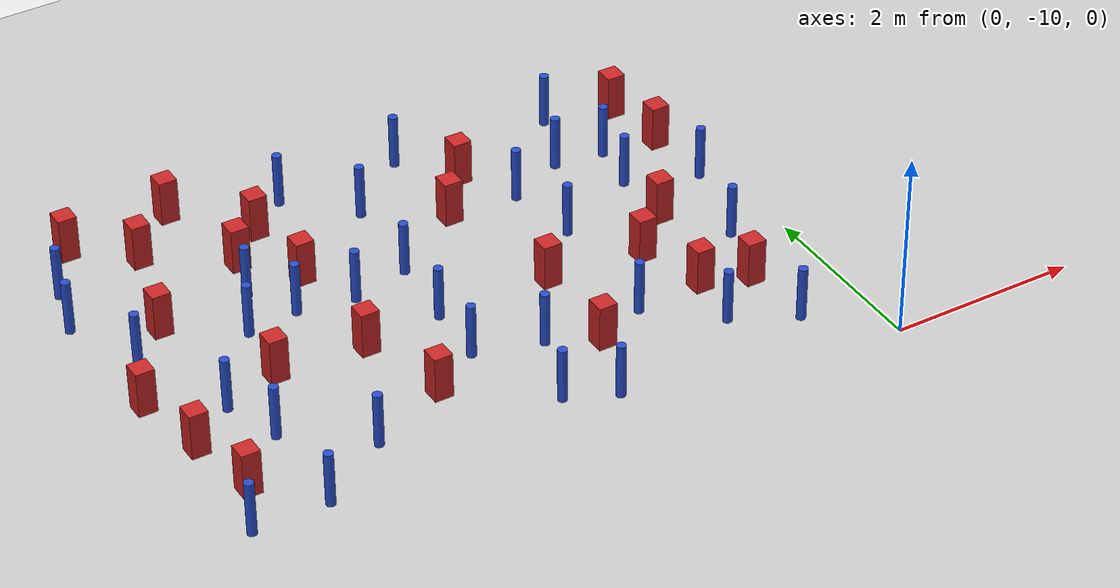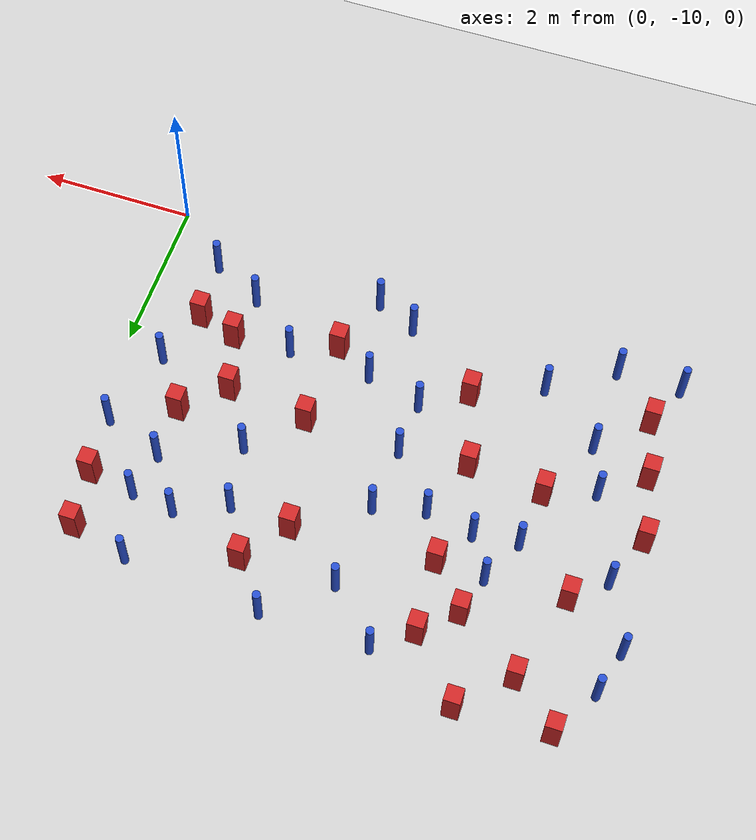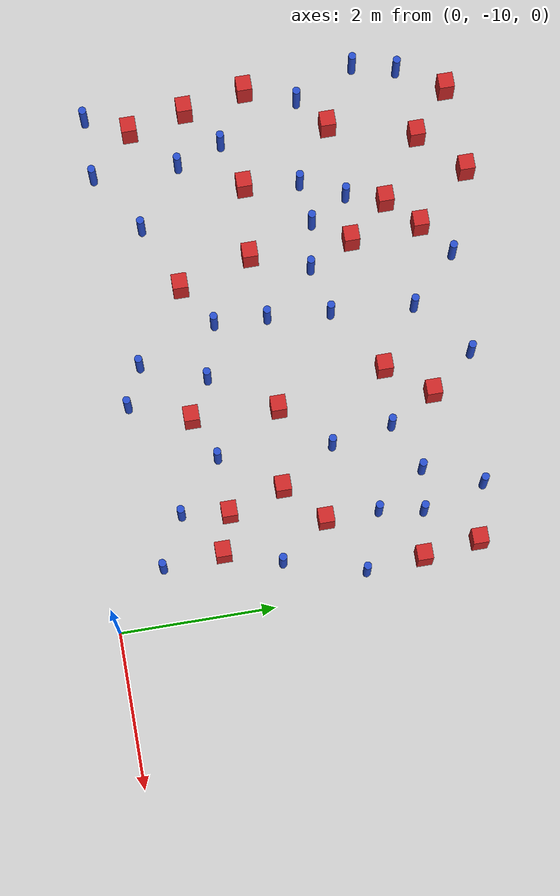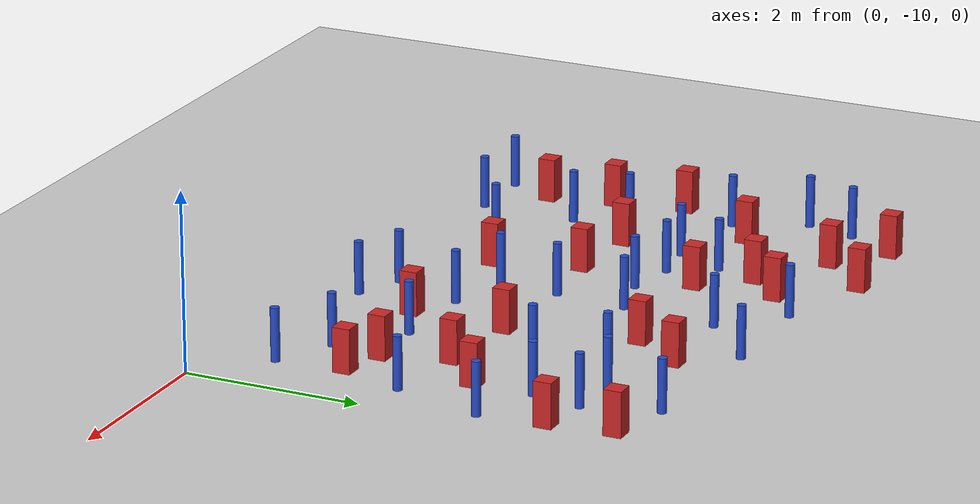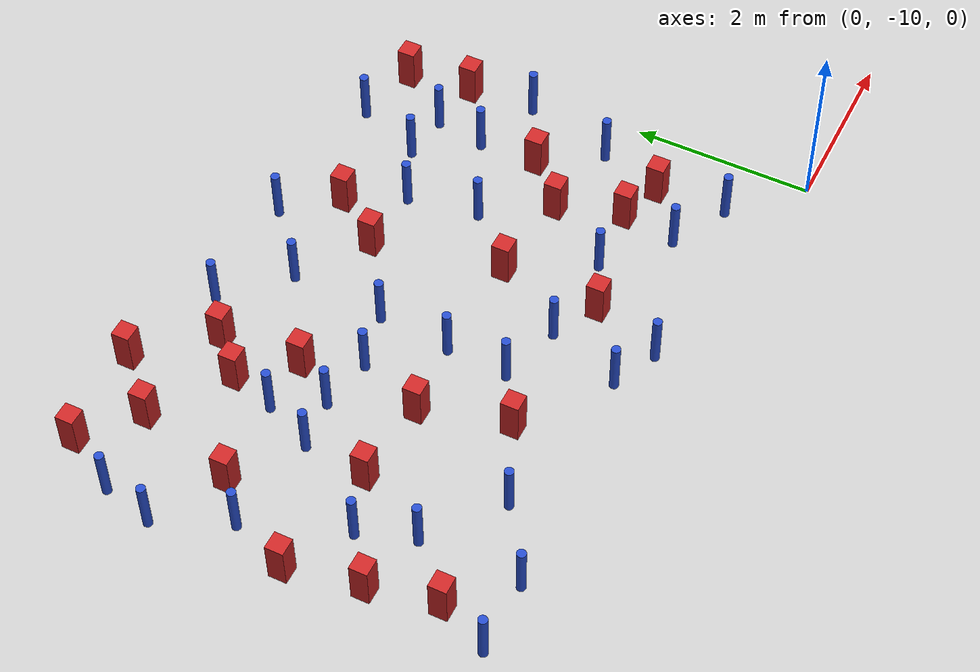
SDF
<sdf version="1.6">
 <world name="default">
  <model name="ground_plane">
   <static>1</static>
   <link name="link">
    <collision name="collision">
     <geometry><plane><normal>0 0 1</normal><size>100 100</size></plane></geometry>
     <surface><friction><ode><mu>100</mu><mu2>50</mu2></ode></friction></surface>
    </collision>
    <visual name="visual">
     <cast_shadows>0</cast_shadows>
     <geometry><plane><normal>0 0 1</normal><size>100 100</size></plane></geometry>
     <material>
      <ambient>1.0 1.0 1.0 1.0</ambient>
      <diffuse>0.8 0.8 0.8 1.0</diffuse>
      <specular>0.01 0.01 0.01 1.000000</specular>
     </material>
    </visual>
   </link>
  </model>
  <model name="square_post_obstacle0">
   <static>true</static>
   <pose>-2.51508626237 -7.53984538496 8.22691968438e-08 7.2212513382e-06 -7.54495500217e-07 2.29674213826e-05</pose>
   <link name="link">
    <pose>0 0 0.25 0 -0 0</pose>
    <inertial>
     <mass>100</mass>
     <inertia>
      <ixx>0.166667</ixx>
      <ixy>0</ixy>
      <ixz>0</ixz>
      <iyy>0.166667</iyy>
      <iyz>0</iyz>
      <izz>0.166667</izz>
     </inertia>
    </inertial>
    <collision name="collision"><geometry><box><size>.2 .2 .5</size></box></geometry></collision>
    <visual name="visual">
     <geometry><box><size>.2 .2 .5</size></box></geometry>
     <material>
      <script><name>Gazebo/Red</name><uri>file://media/materials/scripts/gazebo.material</uri></script>
     </material>
    </visual>
   </link>
  </model>
  <model name="pole_obstacle2">
   <static>true</static>
   <pose>-3.71937393445 -7.48251742339 2.88873142074e-08 -9.90536689859e-09 4.60219948989e-07 -1.20965994961e-07</pose>
   <link name="link">
    <pose>0 0 0.3 0 -0 0</pose>
    <inertial>
     <mass>1</mass>
     <inertia><ixx>0.145833</ixx><ixy>0</ixy><ixz>0</ixz><iyy>0.145833</iyy><iyz>0</iyz><izz>0.125</izz></inertia>
    </inertial>
    <collision name="collision">
     <geometry><cylinder><radius>0.05</radius><length>.6</length></cylinder></geometry>
    </collision>
    <visual name="visual">
     <geometry><cylinder><radius>0.05</radius><length>.6</length></cylinder></geometry>
     <material>
      <script><name>Gazebo/Blue</name><uri>file://media/materials/scripts/gazebo.material</uri></script>
     </material>
    </visual>
   </link>
  </model>
  <model name="square_post_obstacle7">
   <static>true</static>
   <pose>-5.82940536862 -5.1514806708 8.22691968438e-08 7.2212513382e-06 -7.54495500217e-07 2.29674213826e-05</pose>
   <link name="link">
    <pose>0 0 0.25 0 -0 0</pose>
    <inertial>
     <mass>100</mass>
     <inertia>
      <ixx>0.166667</ixx>
      <ixy>0</ixy>
      <ixz>0</ixz>
      <iyy>0.166667</iyy>
      <iyz>0</iyz>
      <izz>0.166667</izz>
     </inertia>
    </inertial>
    <collision name="collision"><geometry><box><size>.2 .2 .5</size></box></geometry></collision>
    <visual name="visual">
     <geometry><box><size>.2 .2 .5</size></box></geometry>
     <material>
      <script><name>Gazebo/Red</name><uri>file://media/materials/scripts/gazebo.material</uri></script>
     </material>
    </visual>
   </link>
  </model>
  <model name="square_post_obstacle11">
   <static>true</static>
   <pose>-6.14885330186 -6.27822620276 8.22691968438e-08 7.2212513382e-06 -7.54495500217e-07 2.29674213826e-05</pose>
   <link name="link">
    <pose>0 0 0.25 0 -0 0</pose>
    <inertial>
     <mass>100</mass>
     <inertia>
      <ixx>0.166667</ixx>
      <ixy>0</ixy>
      <ixz>0</ixz>
      <iyy>0.166667</iyy>
      <iyz>0</iyz>
      <izz>0.166667</izz>
     </inertia>
    </inertial>
    <collision name="collision"><geometry><box><size>.2 .2 .5</size></box></geometry></collision>
    <visual name="visual">
     <geometry><box><size>.2 .2 .5</size></box></geometry>
     <material>
      <script><name>Gazebo/Red</name><uri>file://media/materials/scripts/gazebo.material</uri></script>
     </material>
    </visual>
   </link>
  </model>
  <model name="square_post_obstacle12">
   <static>true</static>
   <pose>-1.4836494756 -7.65505798456 8.22691968438e-08 7.2212513382e-06 -7.54495500217e-07 2.29674213826e-05</pose>
   <link name="link">
    <pose>0 0 0.25 0 -0 0</pose>
    <inertial>
     <mass>100</mass>
     <inertia>
      <ixx>0.166667</ixx>
      <ixy>0</ixy>
      <ixz>0</ixz>
      <iyy>0.166667</iyy>
      <iyz>0</iyz>
      <izz>0.166667</izz>
     </inertia>
    </inertial>
    <collision name="collision"><geometry><box><size>.2 .2 .5</size></box></geometry></collision>
    <visual name="visual">
     <geometry><box><size>.2 .2 .5</size></box></geometry>
     <material>
      <script><name>Gazebo/Red</name><uri>file://media/materials/scripts/gazebo.material</uri></script>
     </material>
    </visual>
   </link>
  </model>
  <model name="square_post_obstacle16">
   <static>true</static>
   <pose>-6.39864318015 -4.66652046836 8.22691968438e-08 7.2212513382e-06 -7.54495500217e-07 2.29674213826e-05</pose>
   <link name="link">
    <pose>0 0 0.25 0 -0 0</pose>
    <inertial>
     <mass>100</mass>
     <inertia>
      <ixx>0.166667</ixx>
      <ixy>0</ixy>
      <ixz>0</ixz>
      <iyy>0.166667</iyy>
      <iyz>0</iyz>
      <izz>0.166667</izz>
     </inertia>
    </inertial>
    <collision name="collision"><geometry><box><size>.2 .2 .5</size></box></geometry></collision>
    <visual name="visual">
     <geometry><box><size>.2 .2 .5</size></box></geometry>
     <material>
      <script><name>Gazebo/Red</name><uri>file://media/materials/scripts/gazebo.material</uri></script>
     </material>
    </visual>
   </link>
  </model>
  <model name="square_post_obstacle17">
   <static>true</static>
   <pose>-2.39460660989 -5.54675566457 8.22691968438e-08 7.2212513382e-06 -7.54495500217e-07 2.29674213826e-05</pose>
   <link name="link">
    <pose>0 0 0.25 0 -0 0</pose>
    <inertial>
     <mass>100</mass>
     <inertia>
      <ixx>0.166667</ixx>
      <ixy>0</ixy>
      <ixz>0</ixz>
      <iyy>0.166667</iyy>
      <iyz>0</iyz>
      <izz>0.166667</izz>
     </inertia>
    </inertial>
    <collision name="collision"><geometry><box><size>.2 .2 .5</size></box></geometry></collision>
    <visual name="visual">
     <geometry><box><size>.2 .2 .5</size></box></geometry>
     <material>
      <script><name>Gazebo/Red</name><uri>file://media/materials/scripts/gazebo.material</uri></script>
     </material>
    </visual>
   </link>
  </model>
  <model name="square_post_obstacle18">
   <static>true</static>
   <pose>-4.30766637956 -8.52579925816 8.22691968438e-08 7.22125133819e-06 -7.54495500217e-07 2.29674213826e-05</pose>
   <link name="link">
    <pose>0 0 0.25 0 -0 0</pose>
    <inertial>
     <mass>100</mass>
     <inertia>
      <ixx>0.166667</ixx>
      <ixy>0</ixy>
      <ixz>0</ixz>
      <iyy>0.166667</iyy>
      <iyz>0</iyz>
      <izz>0.166667</izz>
     </inertia>
    </inertial>
    <collision name="collision"><geometry><box><size>.2 .2 .5</size></box></geometry></collision>
    <visual name="visual">
     <geometry><box><size>.2 .2 .5</size></box></geometry>
     <material>
      <script><name>Gazebo/Red</name><uri>file://media/materials/scripts/gazebo.material</uri></script>
     </material>
    </visual>
   </link>
  </model>
  <model name="square_post_obstacle22">
   <static>true</static>
   <pose>-6.4985242495 -8.85052019008 8.22691968438e-08 7.22125133819e-06 -7.54495500217e-07 2.29674213826e-05</pose>
   <link name="link">
    <pose>0 0 0.25 0 -0 0</pose>
    <inertial>
     <mass>100</mass>
     <inertia>
      <ixx>0.166667</ixx>
      <ixy>0</ixy>
      <ixz>0</ixz>
      <iyy>0.166667</iyy>
      <iyz>0</iyz>
      <izz>0.166667</izz>
     </inertia>
    </inertial>
    <collision name="collision"><geometry><box><size>.2 .2 .5</size></box></geometry></collision>
    <visual name="visual">
     <geometry><box><size>.2 .2 .5</size></box></geometry>
     <material>
      <script><name>Gazebo/Red</name><uri>file://media/materials/scripts/gazebo.material</uri></script>
     </material>
    </visual>
   </link>
  </model>
  <model name="pole_obstacle17">
   <static>true</static>
   <pose>-1.42520517139 -5.86311108822 2.88873142074e-08 -9.90536689852e-09 4.60219948989e-07 -1.2096599496e-07</pose>
   <link name="link">
    <pose>0 0 0.3 0 -0 0</pose>
    <inertial>
     <mass>1</mass>
     <inertia><ixx>0.145833</ixx><ixy>0</ixy><ixz>0</ixz><iyy>0.145833</iyy><iyz>0</iyz><izz>0.125</izz></inertia>
    </inertial>
    <collision name="collision">
     <geometry><cylinder><radius>0.05</radius><length>.6</length></cylinder></geometry>
    </collision>
    <visual name="visual">
     <geometry><cylinder><radius>0.05</radius><length>.6</length></cylinder></geometry>
     <material>
      <script><name>Gazebo/Blue</name><uri>file://media/materials/scripts/gazebo.material</uri></script>
     </material>
    </visual>
   </link>
  </model>
  <model name="pole_obstacle19">
   <static>true</static>
   <pose>-0.705162636083 -9.32146711914 2.88873142074e-08 -9.90536690779e-09 4.60219948967e-07 -1.20965994975e-07</pose>
   <link name="link">
    <pose>0 0 0.3 0 -0 0</pose>
    <inertial>
     <mass>1</mass>
     <inertia><ixx>0.145833</ixx><ixy>0</ixy><ixz>0</ixz><iyy>0.145833</iyy><iyz>0</iyz><izz>0.125</izz></inertia>
    </inertial>
    <collision name="collision">
     <geometry><cylinder><radius>0.05</radius><length>.6</length></cylinder></geometry>
    </collision>
    <visual name="visual">
     <geometry><cylinder><radius>0.05</radius><length>.6</length></cylinder></geometry>
     <material>
      <script><name>Gazebo/Blue</name><uri>file://media/materials/scripts/gazebo.material</uri></script>
     </material>
    </visual>
   </link>
  </model>
  <model name="pole_obstacle20">
   <static>true</static>
   <pose>-3.04957999748 -8.37254902779 2.88873142074e-08 -9.90536692318e-09 4.6021994893e-07 -1.20965994988e-07</pose>
   <link name="link">
    <pose>0 0 0.3 0 -0 0</pose>
    <inertial>
     <mass>1</mass>
     <inertia><ixx>0.145833</ixx><ixy>0</ixy><ixz>0</ixz><iyy>0.145833</iyy><iyz>0</iyz><izz>0.125</izz></inertia>
    </inertial>
    <collision name="collision">
     <geometry><cylinder><radius>0.05</radius><length>.6</length></cylinder></geometry>
    </collision>
    <visual name="visual">
     <geometry><cylinder><radius>0.05</radius><length>.6</length></cylinder></geometry>
     <material>
      <script><name>Gazebo/Blue</name><uri>file://media/materials/scripts/gazebo.material</uri></script>
     </material>
    </visual>
   </link>
  </model>
  <model name="pole_obstacle29">
   <static>true</static>
   <pose>-2.84771217117 -9.43781247174 2.88873142074e-08 -9.90536692318e-09 4.6021994893e-07 -1.20965994988e-07</pose>
   <link name="link">
    <pose>0 0 0.3 0 -0 0</pose>
    <inertial>
     <mass>1</mass>
     <inertia><ixx>0.145833</ixx><ixy>0</ixy><ixz>0</ixz><iyy>0.145833</iyy><iyz>0</iyz><izz>0.125</izz></inertia>
    </inertial>
    <collision name="collision">
     <geometry><cylinder><radius>0.05</radius><length>.6</length></cylinder></geometry>
    </collision>
    <visual name="visual">
     <geometry><cylinder><radius>0.05</radius><length>.6</length></cylinder></geometry>
     <material>
      <script><name>Gazebo/Blue</name><uri>file://media/materials/scripts/gazebo.material</uri></script>
     </material>
    </visual>
   </link>
  </model>
  <model name="pole_obstacle37">
   <static>true</static>
   <pose>-3.64933210124 -6.66316768569 2.88873142074e-08 -9.90536692062e-09 4.60219948937e-07 -1.20965994985e-07</pose>
   <link name="link">
    <pose>0 0 0.3 0 -0 0</pose>
    <inertial>
     <mass>1</mass>
     <inertia><ixx>0.145833</ixx><ixy>0</ixy><ixz>0</ixz><iyy>0.145833</iyy><iyz>0</iyz><izz>0.125</izz></inertia>
    </inertial>
    <collision name="collision">
     <geometry><cylinder><radius>0.05</radius><length>.6</length></cylinder></geometry>
    </collision>
    <visual name="visual">
     <geometry><cylinder><radius>0.05</radius><length>.6</length></cylinder></geometry>
     <material>
      <script><name>Gazebo/Blue</name><uri>file://media/materials/scripts/gazebo.material</uri></script>
     </material>
    </visual>
   </link>
  </model>
  <model name="square_post_obstacle38">
   <static>true</static>
   <pose>-5.26455278148 -4.59985325901 8.22691968438e-08 7.22125133819e-06 -7.54495500217e-07 2.29674213826e-05</pose>
   <link name="link">
    <pose>0 0 0.25 0 -0 0</pose>
    <inertial>
     <mass>100</mass>
     <inertia>
      <ixx>0.166667</ixx>
      <ixy>0</ixy>
      <ixz>0</ixz>
      <iyy>0.166667</iyy>
      <iyz>0</iyz>
      <izz>0.166667</izz>
     </inertia>
    </inertial>
    <collision name="collision"><geometry><box><size>.2 .2 .5</size></box></geometry></collision>
    <visual name="visual">
     <geometry><box><size>.2 .2 .5</size></box></geometry>
     <material>
      <script><name>Gazebo/Red</name><uri>file://media/materials/scripts/gazebo.material</uri></script>
     </material>
    </visual>
   </link>
  </model>
  <model name="pole_obstacle40">
   <static>true</static>
   <pose>-5.43135787001 -6.7651728349 2.88873142074e-08 -9.90536690842e-09 4.60219948965e-07 -1.20965994976e-07</pose>
   <link name="link">
    <pose>0 0 0.3 0 -0 0</pose>
    <inertial>
     <mass>1</mass>
     <inertia><ixx>0.145833</ixx><ixy>0</ixy><ixz>0</ixz><iyy>0.145833</iyy><iyz>0</iyz><izz>0.125</izz></inertia>
    </inertial>
    <collision name="collision">
     <geometry><cylinder><radius>0.05</radius><length>.6</length></cylinder></geometry>
    </collision>
    <visual name="visual">
     <geometry><cylinder><radius>0.05</radius><length>.6</length></cylinder></geometry>
     <material>
      <script><name>Gazebo/Blue</name><uri>file://media/materials/scripts/gazebo.material</uri></script>
     </material>
    </visual>
   </link>
  </model>
  <model name="square_post_obstacle41">
   <static>true</static>
   <pose>-0.986150712257 -7.18634603621 8.22691968438e-08 7.22125133819e-06 -7.54495500217e-07 2.29674213826e-05</pose>
   <link name="link">
    <pose>0 0 0.25 0 -0 0</pose>
    <inertial>
     <mass>100</mass>
     <inertia>
      <ixx>0.166667</ixx>
      <ixy>0</ixy>
      <ixz>0</ixz>
      <iyy>0.166667</iyy>
      <iyz>0</iyz>
      <izz>0.166667</izz>
     </inertia>
    </inertial>
    <collision name="collision"><geometry><box><size>.2 .2 .5</size></box></geometry></collision>
    <visual name="visual">
     <geometry><box><size>.2 .2 .5</size></box></geometry>
     <material>
      <script><name>Gazebo/Red</name><uri>file://media/materials/scripts/gazebo.material</uri></script>
     </material>
    </visual>
   </link>
  </model>
  <model name="pole_obstacle45">
   <static>true</static>
   <pose>-1.11614519946 -5.12299648741 2.88873142074e-08 -9.90536689852e-09 4.60219948989e-07 -1.2096599496e-07</pose>
   <link name="link">
    <pose>0 0 0.3 0 -0 0</pose>
    <inertial>
     <mass>1</mass>
     <inertia><ixx>0.145833</ixx><ixy>0</ixy><ixz>0</ixz><iyy>0.145833</iyy><iyz>0</iyz><izz>0.125</izz></inertia>
    </inertial>
    <collision name="collision">
     <geometry><cylinder><radius>0.05</radius><length>.6</length></cylinder></geometry>
    </collision>
    <visual name="visual">
     <geometry><cylinder><radius>0.05</radius><length>.6</length></cylinder></geometry>
     <material>
      <script><name>Gazebo/Blue</name><uri>file://media/materials/scripts/gazebo.material</uri></script>
     </material>
    </visual>
   </link>
  </model>
  <model name="pole_obstacle51">
   <static>true</static>
   <pose>-4.17418615683 -4.97136022857 2.88873142074e-08 -9.90536690842e-09 4.60219948965e-07 -1.20965994976e-07</pose>
   <link name="link">
    <pose>0 0 0.3 0 -0 0</pose>
    <inertial>
     <mass>1</mass>
     <inertia><ixx>0.145833</ixx><ixy>0</ixy><ixz>0</ixz><iyy>0.145833</iyy><iyz>0</iyz><izz>0.125</izz></inertia>
    </inertial>
    <collision name="collision">
     <geometry><cylinder><radius>0.05</radius><length>.6</length></cylinder></geometry>
    </collision>
    <visual name="visual">
     <geometry><cylinder><radius>0.05</radius><length>.6</length></cylinder></geometry>
     <material>
      <script><name>Gazebo/Blue</name><uri>file://media/materials/scripts/gazebo.material</uri></script>
     </material>
    </visual>
   </link>
  </model>
  <model name="pole_obstacle54">
   <static>true</static>
   <pose>-5.16151074968 -8.89676865358 2.88873142074e-08 -9.9053668967e-09 4.60219948993e-07 -1.20965994957e-07</pose>
   <link name="link">
    <pose>0 0 0.3 0 -0 0</pose>
    <inertial>
     <mass>1</mass>
     <inertia><ixx>0.145833</ixx><ixy>0</ixy><ixz>0</ixz><iyy>0.145833</iyy><iyz>0</iyz><izz>0.125</izz></inertia>
    </inertial>
    <collision name="collision">
     <geometry><cylinder><radius>0.05</radius><length>.6</length></cylinder></geometry>
    </collision>
    <visual name="visual">
     <geometry><cylinder><radius>0.05</radius><length>.6</length></cylinder></geometry>
     <material>
      <script><name>Gazebo/Blue</name><uri>file://media/materials/scripts/gazebo.material</uri></script>
     </material>
    </visual>
   </link>
  </model>
  <model name="square_post_obstacle59">
   <static>true</static>
   <pose>-5.01947749802 -5.70800457586 8.22691968438e-08 7.22125133819e-06 -7.54495500217e-07 2.29674213826e-05</pose>
   <link name="link">
    <pose>0 0 0.25 0 -0 0</pose>
    <inertial>
     <mass>100</mass>
     <inertia>
      <ixx>0.166667</ixx>
      <ixy>0</ixy>
      <ixz>0</ixz>
      <iyy>0.166667</iyy>
      <iyz>0</iyz>
      <izz>0.166667</izz>
     </inertia>
    </inertial>
    <collision name="collision"><geometry><box><size>.2 .2 .5</size></box></geometry></collision>
    <visual name="visual">
     <geometry><box><size>.2 .2 .5</size></box></geometry>
     <material>
      <script><name>Gazebo/Red</name><uri>file://media/materials/scripts/gazebo.material</uri></script>
     </material>
    </visual>
   </link>
  </model>
  <model name="pole_obstacle75">
   <static>true</static>
   <pose>-3.55947425901 -5.58299445558 2.88873142074e-08 -9.90536689859e-09 4.60219948989e-07 -1.20965994961e-07</pose>
   <link name="link">
    <pose>0 0 0.3 0 -0 0</pose>
    <inertial>
     <mass>1</mass>
     <inertia><ixx>0.145833</ixx><ixy>0</ixy><ixz>0</ixz><iyy>0.145833</iyy><iyz>0</iyz><izz>0.125</izz></inertia>
    </inertial>
    <collision name="collision">
     <geometry><cylinder><radius>0.05</radius><length>.6</length></cylinder></geometry>
    </collision>
    <visual name="visual">
     <geometry><cylinder><radius>0.05</radius><length>.6</length></cylinder></geometry>
     <material>
      <script><name>Gazebo/Blue</name><uri>file://media/materials/scripts/gazebo.material</uri></script>
     </material>
    </visual>
   </link>
  </model>
  <model name="pole_obstacle79">
   <static>true</static>
   <pose>-2.83426054669 -4.97281316929 2.88873142074e-08 -9.90536689859e-09 4.60219948989e-07 -1.20965994961e-07</pose>
   <link name="link">
    <pose>0 0 0.3 0 -0 0</pose>
    <inertial>
     <mass>1</mass>
     <inertia><ixx>0.145833</ixx><ixy>0</ixy><ixz>0</ixz><iyy>0.145833</iyy><iyz>0</iyz><izz>0.125</izz></inertia>
    </inertial>
    <collision name="collision">
     <geometry><cylinder><radius>0.05</radius><length>.6</length></cylinder></geometry>
    </collision>
    <visual name="visual">
     <geometry><cylinder><radius>0.05</radius><length>.6</length></cylinder></geometry>
     <material>
      <script><name>Gazebo/Blue</name><uri>file://media/materials/scripts/gazebo.material</uri></script>
     </material>
    </visual>
   </link>
  </model>
  <model name="pole_obstacle84">
   <static>true</static>
   <pose>-2.00017908142 -8.41172841677 2.88873142074e-08 -9.9053669068e-09 4.60219948969e-07 -1.20965994974e-07</pose>
   <link name="link">
    <pose>0 0 0.3 0 -0 0</pose>
    <inertial>
     <mass>1</mass>
     <inertia><ixx>0.145833</ixx><ixy>0</ixy><ixz>0</ixz><iyy>0.145833</iyy><iyz>0</iyz><izz>0.125</izz></inertia>
    </inertial>
    <collision name="collision">
     <geometry><cylinder><radius>0.05</radius><length>.6</length></cylinder></geometry>
    </collision>
    <visual name="visual">
     <geometry><cylinder><radius>0.05</radius><length>.6</length></cylinder></geometry>
     <material>
      <script><name>Gazebo/Blue</name><uri>file://media/materials/scripts/gazebo.material</uri></script>
     </material>
    </visual>
   </link>
  </model>
  <model name="pole_obstacle93">
   <static>true</static>
   <pose>-5.94739089201 -9.41054566803 2.88873142074e-08 -9.9053668967e-09 4.60219948993e-07 -1.20965994957e-07</pose>
   <link name="link">
    <pose>0 0 0.3 0 -0 0</pose>
    <inertial>
     <mass>1</mass>
     <inertia><ixx>0.145833</ixx><ixy>0</ixy><ixz>0</ixz><iyy>0.145833</iyy><iyz>0</iyz><izz>0.125</izz></inertia>
    </inertial>
    <collision name="collision">
     <geometry><cylinder><radius>0.05</radius><length>.6</length></cylinder></geometry>
    </collision>
    <visual name="visual">
     <geometry><cylinder><radius>0.05</radius><length>.6</length></cylinder></geometry>
     <material>
      <script><name>Gazebo/Blue</name><uri>file://media/materials/scripts/gazebo.material</uri></script>
     </material>
    </visual>
   </link>
  </model>
  <model name="pole_obstacle102">
   <static>true</static>
   <pose>-5.92750450284 -8.29512477355 2.88873142074e-08 -9.9053668967e-09 4.60219948993e-07 -1.20965994957e-07</pose>
   <link name="link">
    <pose>0 0 0.3 0 -0 0</pose>
    <inertial>
     <mass>1</mass>
     <inertia><ixx>0.145833</ixx><ixy>0</ixy><ixz>0</ixz><iyy>0.145833</iyy><iyz>0</iyz><izz>0.125</izz></inertia>
    </inertial>
    <collision name="collision">
     <geometry><cylinder><radius>0.05</radius><length>.6</length></cylinder></geometry>
    </collision>
    <visual name="visual">
     <geometry><cylinder><radius>0.05</radius><length>.6</length></cylinder></geometry>
     <material>
      <script><name>Gazebo/Blue</name><uri>file://media/materials/scripts/gazebo.material</uri></script>
     </material>
    </visual>
   </link>
  </model>
  <model name="pole_obstacle104">
   <static>true</static>
   <pose>-6.89681617584 -5.8217436113 2.88873142074e-08 -9.90536690842e-09 4.60219948965e-07 -1.20965994976e-07</pose>
   <link name="link">
    <pose>0 0 0.3 0 -0 0</pose>
    <inertial>
     <mass>1</mass>
     <inertia><ixx>0.145833</ixx><ixy>0</ixy><ixz>0</ixz><iyy>0.145833</iyy><iyz>0</iyz><izz>0.125</izz></inertia>
    </inertial>
    <collision name="collision">
     <geometry><cylinder><radius>0.05</radius><length>.6</length></cylinder></geometry>
    </collision>
    <visual name="visual">
     <geometry><cylinder><radius>0.05</radius><length>.6</length></cylinder></geometry>
     <material>
      <script><name>Gazebo/Blue</name><uri>file://media/materials/scripts/gazebo.material</uri></script>
     </material>
    </visual>
   </link>
  </model>
  <model name="square_post_obstacle100">
   <static>true</static>
   <pose>-4.57000115543 -6.23770089648 8.22691968438e-08 7.2212513382e-06 -7.54495500217e-07 2.29674213826e-05</pose>
   <link name="link">
    <pose>0 0 0.25 0 -0 0</pose>
    <inertial>
     <mass>100</mass>
     <inertia>
      <ixx>0.166667</ixx>
      <ixy>0</ixy>
      <ixz>0</ixz>
      <iyy>0.166667</iyy>
      <iyz>0</iyz>
      <izz>0.166667</izz>
     </inertia>
    </inertial>
    <collision name="collision"><geometry><box><size>.2 .2 .5</size></box></geometry></collision>
    <visual name="visual">
     <geometry><box><size>.2 .2 .5</size></box></geometry>
     <material>
      <script><name>Gazebo/Red</name><uri>file://media/materials/scripts/gazebo.material</uri></script>
     </material>
    </visual>
   </link>
  </model>
  <model name="pole_obstacle125">
   <static>true</static>
   <pose>-3.75189294065 -8.17088663704 2.88873142074e-08 -9.90536692318e-09 4.6021994893e-07 -1.20965994988e-07</pose>
   <link name="link">
    <pose>0 0 0.3 0 -0 0</pose>
    <inertial>
     <mass>1</mass>
     <inertia><ixx>0.145833</ixx><ixy>0</ixy><ixz>0</ixz><iyy>0.145833</iyy><iyz>0</iyz><izz>0.125</izz></inertia>
    </inertial>
    <collision name="collision">
     <geometry><cylinder><radius>0.05</radius><length>.6</length></cylinder></geometry>
    </collision>
    <visual name="visual">
     <geometry><cylinder><radius>0.05</radius><length>.6</length></cylinder></geometry>
     <material>
      <script><name>Gazebo/Blue</name><uri>file://media/materials/scripts/gazebo.material</uri></script>
     </material>
    </visual>
   </link>
  </model>
  <model name="square_post_obstacle113">
   <static>true</static>
   <pose>-0.403657920133 -5.31574201073 8.22691968438e-08 7.22125133819e-06 -7.54495500217e-07 2.29674213826e-05</pose>
   <link name="link">
    <pose>0 0 0.25 0 -0 0</pose>
    <inertial>
     <mass>100</mass>
     <inertia>
      <ixx>0.166667</ixx>
      <ixy>0</ixy>
      <ixz>0</ixz>
      <iyy>0.166667</iyy>
      <iyz>0</iyz>
      <izz>0.166667</izz>
     </inertia>
    </inertial>
    <collision name="collision"><geometry><box><size>.2 .2 .5</size></box></geometry></collision>
    <visual name="visual">
     <geometry><box><size>.2 .2 .5</size></box></geometry>
     <material>
      <script><name>Gazebo/Red</name><uri>file://media/materials/scripts/gazebo.material</uri></script>
     </material>
    </visual>
   </link>
  </model>
  <model name="pole_obstacle135">
   <static>true</static>
   <pose>-6.55104731265 -6.61959034885 2.88873142074e-08 -9.90536690842e-09 4.60219948965e-07 -1.20965994976e-07</pose>
   <link name="link">
    <pose>0 0 0.3 0 -0 0</pose>
    <inertial>
     <mass>1</mass>
     <inertia><ixx>0.145833</ixx><ixy>0</ixy><ixz>0</ixz><iyy>0.145833</iyy><iyz>0</iyz><izz>0.125</izz></inertia>
    </inertial>
    <collision name="collision">
     <geometry><cylinder><radius>0.05</radius><length>.6</length></cylinder></geometry>
    </collision>
    <visual name="visual">
     <geometry><cylinder><radius>0.05</radius><length>.6</length></cylinder></geometry>
     <material>
      <script><name>Gazebo/Blue</name><uri>file://media/materials/scripts/gazebo.material</uri></script>
     </material>
    </visual>
   </link>
  </model>
  <model name="pole_obstacle139">
   <static>true</static>
   <pose>-1.92684742799 -6.93922897534 2.88873142074e-08 -9.90536689852e-09 4.60219948989e-07 -1.2096599496e-07</pose>
   <link name="link">
    <pose>0 0 0.3 0 -0 0</pose>
    <inertial>
     <mass>1</mass>
     <inertia><ixx>0.145833</ixx><ixy>0</ixy><ixz>0</ixz><iyy>0.145833</iyy><iyz>0</iyz><izz>0.125</izz></inertia>
    </inertial>
    <collision name="collision">
     <geometry><cylinder><radius>0.05</radius><length>.6</length></cylinder></geometry>
    </collision>
    <visual name="visual">
     <geometry><cylinder><radius>0.05</radius><length>.6</length></cylinder></geometry>
     <material>
      <script><name>Gazebo/Blue</name><uri>file://media/materials/scripts/gazebo.material</uri></script>
     </material>
    </visual>
   </link>
  </model>
  <model name="pole_obstacle143">
   <static>true</static>
   <pose>-6.75058081614 -5.25832002856 2.88873142074e-08 -9.90536690842e-09 4.60219948965e-07 -1.20965994976e-07</pose>
   <link name="link">
    <pose>0 0 0.3 0 -0 0</pose>
    <inertial>
     <mass>1</mass>
     <inertia><ixx>0.145833</ixx><ixy>0</ixy><ixz>0</ixz><iyy>0.145833</iyy><iyz>0</iyz><izz>0.125</izz></inertia>
    </inertial>
    <collision name="collision">
     <geometry><cylinder><radius>0.05</radius><length>.6</length></cylinder></geometry>
    </collision>
    <visual name="visual">
     <geometry><cylinder><radius>0.05</radius><length>.6</length></cylinder></geometry>
     <material>
      <script><name>Gazebo/Blue</name><uri>file://media/materials/scripts/gazebo.material</uri></script>
     </material>
    </visual>
   </link>
  </model>
  <model name="square_post_obstacle137">
   <static>true</static>
   <pose>-6.80325772338 -7.27707940433 8.22691968438e-08 7.22125133819e-06 -7.54495500217e-07 2.29674213826e-05</pose>
   <link name="link">
    <pose>0 0 0.25 0 -0 0</pose>
    <inertial>
     <mass>100</mass>
     <inertia>
      <ixx>0.166667</ixx>
      <ixy>0</ixy>
      <ixz>0</ixz>
      <iyy>0.166667</iyy>
      <iyz>0</iyz>
      <izz>0.166667</izz>
     </inertia>
    </inertial>
    <collision name="collision"><geometry><box><size>.2 .2 .5</size></box></geometry></collision>
    <visual name="visual">
     <geometry><box><size>.2 .2 .5</size></box></geometry>
     <material>
      <script><name>Gazebo/Red</name><uri>file://media/materials/scripts/gazebo.material</uri></script>
     </material>
    </visual>
   </link>
  </model>
  <model name="square_post_obstacle139">
   <static>true</static>
   <pose>-2.81888909122 -6.10868273301 8.22691968438e-08 7.2212513382e-06 -7.54495500217e-07 2.29674213826e-05</pose>
   <link name="link">
    <pose>0 0 0.25 0 -0 0</pose>
    <inertial>
     <mass>100</mass>
     <inertia>
      <ixx>0.166667</ixx>
      <ixy>0</ixy>
      <ixz>0</ixz>
      <iyy>0.166667</iyy>
      <iyz>0</iyz>
      <izz>0.166667</izz>
     </inertia>
    </inertial>
    <collision name="collision"><geometry><box><size>.2 .2 .5</size></box></geometry></collision>
    <visual name="visual">
     <geometry><box><size>.2 .2 .5</size></box></geometry>
     <material>
      <script><name>Gazebo/Red</name><uri>file://media/materials/scripts/gazebo.material</uri></script>
     </material>
    </visual>
   </link>
  </model>
  <model name="square_post_obstacle151">
   <static>true</static>
   <pose>-0.313340628343 -6.04300155991 8.22691968438e-08 7.2212513382e-06 -7.54495500217e-07 2.29674213826e-05</pose>
   <link name="link">
    <pose>0 0 0.25 0 -0 0</pose>
    <inertial>
     <mass>100</mass>
     <inertia>
      <ixx>0.166667</ixx>
      <ixy>0</ixy>
      <ixz>0</ixz>
      <iyy>0.166667</iyy>
      <iyz>0</iyz>
      <izz>0.166667</izz>
     </inertia>
    </inertial>
    <collision name="collision"><geometry><box><size>.2 .2 .5</size></box></geometry></collision>
    <visual name="visual">
     <geometry><box><size>.2 .2 .5</size></box></geometry>
     <material>
      <script><name>Gazebo/Red</name><uri>file://media/materials/scripts/gazebo.material</uri></script>
     </material>
    </visual>
   </link>
  </model>
  <model name="pole_obstacle159">
   <static>true</static>
   <pose>-2.05739312394 -6.14468061038 2.88873142074e-08 -9.90536689859e-09 4.60219948989e-07 -1.20965994961e-07</pose>
   <link name="link">
    <pose>0 0 0.3 0 -0 0</pose>
    <inertial>
     <mass>1</mass>
     <inertia><ixx>0.145833</ixx><ixy>0</ixy><ixz>0</ixz><iyy>0.145833</iyy><iyz>0</iyz><izz>0.125</izz></inertia>
    </inertial>
    <collision name="collision">
     <geometry><cylinder><radius>0.05</radius><length>.6</length></cylinder></geometry>
    </collision>
    <visual name="visual">
     <geometry><cylinder><radius>0.05</radius><length>.6</length></cylinder></geometry>
     <material>
      <script><name>Gazebo/Blue</name><uri>file://media/materials/scripts/gazebo.material</uri></script>
     </material>
    </visual>
   </link>
  </model>
  <model name="pole_obstacle163">
   <static>true</static>
   <pose>-0.241909117911 -6.78521750456 2.88873142074e-08 -9.90536689703e-09 4.60219948992e-07 -1.20965994959e-07</pose>
   <link name="link">
    <pose>0 0 0.3 0 -0 0</pose>
    <inertial>
     <mass>1</mass>
     <inertia><ixx>0.145833</ixx><ixy>0</ixy><ixz>0</ixz><iyy>0.145833</iyy><iyz>0</iyz><izz>0.125</izz></inertia>
    </inertial>
    <collision name="collision">
     <geometry><cylinder><radius>0.05</radius><length>.6</length></cylinder></geometry>
    </collision>
    <visual name="visual">
     <geometry><cylinder><radius>0.05</radius><length>.6</length></cylinder></geometry>
     <material>
      <script><name>Gazebo/Blue</name><uri>file://media/materials/scripts/gazebo.material</uri></script>
     </material>
    </visual>
   </link>
  </model>
  <model name="square_post_obstacle160">
   <static>true</static>
   <pose>-2.56751933846 -8.65857383621 8.22691968438e-08 7.22125133819e-06 -7.54495500217e-07 2.29674213826e-05</pose>
   <link name="link">
    <pose>0 0 0.25 0 -0 0</pose>
    <inertial>
     <mass>100</mass>
     <inertia>
      <ixx>0.166667</ixx>
      <ixy>0</ixy>
      <ixz>0</ixz>
      <iyy>0.166667</iyy>
      <iyz>0</iyz>
      <izz>0.166667</izz>
     </inertia>
    </inertial>
    <collision name="collision"><geometry><box><size>.2 .2 .5</size></box></geometry></collision>
    <visual name="visual">
     <geometry><box><size>.2 .2 .5</size></box></geometry>
     <material>
      <script><name>Gazebo/Red</name><uri>file://media/materials/scripts/gazebo.material</uri></script>
     </material>
    </visual>
   </link>
  </model>
  <model name="square_post_obstacle162">
   <static>true</static>
   <pose>-6.65227575719 -8.09673521487 8.22691968438e-08 7.22125133819e-06 -7.54495500217e-07 2.29674213826e-05</pose>
   <link name="link">
    <pose>0 0 0.25 0 -0 0</pose>
    <inertial>
     <mass>100</mass>
     <inertia>
      <ixx>0.166667</ixx>
      <ixy>0</ixy>
      <ixz>0</ixz>
      <iyy>0.166667</iyy>
      <iyz>0</iyz>
      <izz>0.166667</izz>
     </inertia>
    </inertial>
    <collision name="collision"><geometry><box><size>.2 .2 .5</size></box></geometry></collision>
    <visual name="visual">
     <geometry><box><size>.2 .2 .5</size></box></geometry>
     <material>
      <script><name>Gazebo/Red</name><uri>file://media/materials/scripts/gazebo.material</uri></script>
     </material>
    </visual>
   </link>
  </model>
  <model name="square_post_obstacle170">
   <static>true</static>
   <pose>-5.5137841475 -7.48910887314 8.22691968438e-08 7.2212513382e-06 -7.54495500217e-07 2.29674213826e-05</pose>
   <link name="link">
    <pose>0 0 0.25 0 -0 0</pose>
    <inertial>
     <mass>100</mass>
     <inertia>
      <ixx>0.166667</ixx>
      <ixy>0</ixy>
      <ixz>0</ixz>
      <iyy>0.166667</iyy>
      <iyz>0</iyz>
      <izz>0.166667</izz>
     </inertia>
    </inertial>
    <collision name="collision"><geometry><box><size>.2 .2 .5</size></box></geometry></collision>
    <visual name="visual">
     <geometry><box><size>.2 .2 .5</size></box></geometry>
     <material>
      <script><name>Gazebo/Red</name><uri>file://media/materials/scripts/gazebo.material</uri></script>
     </material>
    </visual>
   </link>
  </model>
  <model name="pole_obstacle184">
   <static>true</static>
   <pose>-6.13172803682 -7.69537794987 2.88873142074e-08 -9.90536690842e-09 4.60219948965e-07 -1.20965994976e-07</pose>
   <link name="link">
    <pose>0 0 0.3 0 -0 0</pose>
    <inertial>
     <mass>1</mass>
     <inertia><ixx>0.145833</ixx><ixy>0</ixy><ixz>0</ixz><iyy>0.145833</iyy><iyz>0</iyz><izz>0.125</izz></inertia>
    </inertial>
    <collision name="collision">
     <geometry><cylinder><radius>0.05</radius><length>.6</length></cylinder></geometry>
    </collision>
    <visual name="visual">
     <geometry><cylinder><radius>0.05</radius><length>.6</length></cylinder></geometry>
     <material>
      <script><name>Gazebo/Blue</name><uri>file://media/materials/scripts/gazebo.material</uri></script>
     </material>
    </visual>
   </link>
  </model>
  <model name="pole_obstacle185">
   <static>true</static>
   <pose>-1.34455481633 -8.98626266822 2.88873142074e-08 -9.90536690474e-09 4.60219948974e-07 -1.2096599497e-07</pose>
   <link name="link">
    <pose>0 0 0.3 0 -0 0</pose>
    <inertial>
     <mass>1</mass>
     <inertia><ixx>0.145833</ixx><ixy>0</ixy><ixz>0</ixz><iyy>0.145833</iyy><iyz>0</iyz><izz>0.125</izz></inertia>
    </inertial>
    <collision name="collision">
     <geometry><cylinder><radius>0.05</radius><length>.6</length></cylinder></geometry>
    </collision>
    <visual name="visual">
     <geometry><cylinder><radius>0.05</radius><length>.6</length></cylinder></geometry>
     <material>
      <script><name>Gazebo/Blue</name><uri>file://media/materials/scripts/gazebo.material</uri></script>
     </material>
    </visual>
   </link>
  </model>
  <model name="pole_obstacle186">
   <static>true</static>
   <pose>-0.890000860691 -5.93528766513 2.88873142074e-08 -9.90536689661e-09 4.60219948993e-07 -1.20965994957e-07</pose>
   <link name="link">
    <pose>0 0 0.3 0 -0 0</pose>
    <inertial>
     <mass>1</mass>
     <inertia><ixx>0.145833</ixx><ixy>0</ixy><ixz>0</ixz><iyy>0.145833</iyy><iyz>0</iyz><izz>0.125</izz></inertia>
    </inertial>
    <collision name="collision">
     <geometry><cylinder><radius>0.05</radius><length>.6</length></cylinder></geometry>
    </collision>
    <visual name="visual">
     <geometry><cylinder><radius>0.05</radius><length>.6</length></cylinder></geometry>
     <material>
      <script><name>Gazebo/Blue</name><uri>file://media/materials/scripts/gazebo.material</uri></script>
     </material>
    </visual>
   </link>
  </model>
  <model name="pole_obstacle187">
   <static>true</static>
   <pose>-0.529521392625 -7.81422304996 2.88873142074e-08 -9.90536689526e-09 4.60219948997e-07 -1.20965994955e-07</pose>
   <link name="link">
    <pose>0 0 0.3 0 -0 0</pose>
    <inertial>
     <mass>1</mass>
     <inertia><ixx>0.145833</ixx><ixy>0</ixy><ixz>0</ixz><iyy>0.145833</iyy><iyz>0</iyz><izz>0.125</izz></inertia>
    </inertial>
    <collision name="collision">
     <geometry><cylinder><radius>0.05</radius><length>.6</length></cylinder></geometry>
    </collision>
    <visual name="visual">
     <geometry><cylinder><radius>0.05</radius><length>.6</length></cylinder></geometry>
     <material>
      <script><name>Gazebo/Blue</name><uri>file://media/materials/scripts/gazebo.material</uri></script>
     </material>
    </visual>
   </link>
  </model>
  <model name="square_post_obstacle173">
   <static>true</static>
   <pose>-0.774714838262 -8.5414407771 8.22691968438e-08 7.22125133819e-06 -7.54495500217e-07 2.29674213826e-05</pose>
   <link name="link">
    <pose>0 0 0.25 0 -0 0</pose>
    <inertial>
     <mass>100</mass>
     <inertia>
      <ixx>0.166667</ixx>
      <ixy>0</ixy>
      <ixz>0</ixz>
      <iyy>0.166667</iyy>
      <iyz>0</iyz>
      <izz>0.166667</izz>
     </inertia>
    </inertial>
    <collision name="collision"><geometry><box><size>.2 .2 .5</size></box></geometry></collision>
    <visual name="visual">
     <geometry><box><size>.2 .2 .5</size></box></geometry>
     <material>
      <script><name>Gazebo/Red</name><uri>file://media/materials/scripts/gazebo.material</uri></script>
     </material>
    </visual>
   </link>
  </model>
  <model name="square_post_obstacle181">
   <static>true</static>
   <pose>-4.62138353059 -5.31919883597 8.22691968438e-08 7.22125133819e-06 -7.54495500217e-07 2.29674213826e-05</pose>
   <link name="link">
    <pose>0 0 0.25 0 -0 0</pose>
    <inertial>
     <mass>100</mass>
     <inertia>
      <ixx>0.166667</ixx>
      <ixy>0</ixy>
      <ixz>0</ixz>
      <iyy>0.166667</iyy>
      <iyz>0</iyz>
      <izz>0.166667</izz>
     </inertia>
    </inertial>
    <collision name="collision"><geometry><box><size>.2 .2 .5</size></box></geometry></collision>
    <visual name="visual">
     <geometry><box><size>.2 .2 .5</size></box></geometry>
     <material>
      <script><name>Gazebo/Red</name><uri>file://media/materials/scripts/gazebo.material</uri></script>
     </material>
    </visual>
   </link>
  </model>
  <model name="pole_obstacle195">
   <static>true</static>
   <pose>-6.74830622031 -9.40565358058 2.88873142074e-08 -9.9053668967e-09 4.60219948993e-07 -1.20965994957e-07</pose>
   <link name="link">
    <pose>0 0 0.3 0 -0 0</pose>
    <inertial>
     <mass>1</mass>
     <inertia><ixx>0.145833</ixx><ixy>0</ixy><ixz>0</ixz><iyy>0.145833</iyy><iyz>0</iyz><izz>0.125</izz></inertia>
    </inertial>
    <collision name="collision">
     <geometry><cylinder><radius>0.05</radius><length>.6</length></cylinder></geometry>
    </collision>
    <visual name="visual">
     <geometry><cylinder><radius>0.05</radius><length>.6</length></cylinder></geometry>
     <material>
      <script><name>Gazebo/Blue</name><uri>file://media/materials/scripts/gazebo.material</uri></script>
     </material>
    </visual>
   </link>
  </model>
  <model name="pole_obstacle199">
   <static>true</static>
   <pose>-0.983334098038 -6.50137637216 2.88873142074e-08 -9.90536689644e-09 4.60219948994e-07 -1.20965994957e-07</pose>
   <link name="link">
    <pose>0 0 0.3 0 -0 0</pose>
    <inertial>
     <mass>1</mass>
     <inertia><ixx>0.145833</ixx><ixy>0</ixy><ixz>0</ixz><iyy>0.145833</iyy><iyz>0</iyz><izz>0.125</izz></inertia>
    </inertial>
    <collision name="collision">
     <geometry><cylinder><radius>0.05</radius><length>.6</length></cylinder></geometry>
    </collision>
    <visual name="visual">
     <geometry><cylinder><radius>0.05</radius><length>.6</length></cylinder></geometry>
     <material>
      <script><name>Gazebo/Blue</name><uri>file://media/materials/scripts/gazebo.material</uri></script>
     </material>
    </visual>
   </link>
  </model>
  <model name="square_post_obstacle194">
   <static>true</static>
   <pose>-4.56986791271 -7.56930593083 8.22691968438e-08 7.2212513382e-06 -7.54495500217e-07 2.29674213826e-05</pose>
   <link name="link">
    <pose>0 0 0.25 0 -0 0</pose>
    <inertial>
     <mass>100</mass>
     <inertia>
      <ixx>0.166667</ixx>
      <ixy>0</ixy>
      <ixz>0</ixz>
      <iyy>0.166667</iyy>
      <iyz>0</iyz>
      <izz>0.166667</izz>
     </inertia>
    </inertial>
    <collision name="collision"><geometry><box><size>.2 .2 .5</size></box></geometry></collision>
    <visual name="visual">
     <geometry><box><size>.2 .2 .5</size></box></geometry>
     <material>
      <script><name>Gazebo/Red</name><uri>file://media/materials/scripts/gazebo.material</uri></script>
     </material>
    </visual>
   </link>
  </model>
  <model name="pole_obstacle204">
   <static>true</static>
   <pose>-4.87591970815 -6.70023200842 2.88873142074e-08 -9.90536690842e-09 4.60219948965e-07 -1.20965994976e-07</pose>
   <link name="link">
    <pose>0 0 0.3 0 -0 0</pose>
    <inertial>
     <mass>1</mass>
     <inertia><ixx>0.145833</ixx><ixy>0</ixy><ixz>0</ixz><iyy>0.145833</iyy><iyz>0</iyz><izz>0.125</izz></inertia>
    </inertial>
    <collision name="collision">
     <geometry><cylinder><radius>0.05</radius><length>.6</length></cylinder></geometry>
    </collision>
    <visual name="visual">
     <geometry><cylinder><radius>0.05</radius><length>.6</length></cylinder></geometry>
     <material>
      <script><name>Gazebo/Blue</name><uri>file://media/materials/scripts/gazebo.material</uri></script>
     </material>
    </visual>
   </link>
  </model>
  <model name="pole_obstacle207">
   <static>true</static>
   <pose>-4.27948194298 -6.81534282579 2.88873142074e-08 -9.90536690842e-09 4.60219948965e-07 -1.20965994976e-07</pose>
   <link name="link">
    <pose>0 0 0.3 0 -0 0</pose>
    <inertial>
     <mass>1</mass>
     <inertia><ixx>0.145833</ixx><ixy>0</ixy><ixz>0</ixz><iyy>0.145833</iyy><iyz>0</iyz><izz>0.125</izz></inertia>
    </inertial>
    <collision name="collision">
     <geometry><cylinder><radius>0.05</radius><length>.6</length></cylinder></geometry>
    </collision>
    <visual name="visual">
     <geometry><cylinder><radius>0.05</radius><length>.6</length></cylinder></geometry>
     <material>
      <script><name>Gazebo/Blue</name><uri>file://media/materials/scripts/gazebo.material</uri></script>
     </material>
    </visual>
   </link>
  </model>
  <model name="pole_obstacle208">
   <static>true</static>
   <pose>-3.35548064305 -9.20602651856 2.88873142074e-08 -9.9053668994e-09 4.60219948987e-07 -1.20965994963e-07</pose>
   <link name="link">
    <pose>0 0 0.3 0 -0 0</pose>
    <inertial>
     <mass>1</mass>
     <inertia><ixx>0.145833</ixx><ixy>0</ixy><ixz>0</ixz><iyy>0.145833</iyy><iyz>0</iyz><izz>0.125</izz></inertia>
    </inertial>
    <collision name="collision">
     <geometry><cylinder><radius>0.05</radius><length>.6</length></cylinder></geometry>
    </collision>
    <visual name="visual">
     <geometry><cylinder><radius>0.05</radius><length>.6</length></cylinder></geometry>
     <material>
      <script><name>Gazebo/Blue</name><uri>file://media/materials/scripts/gazebo.material</uri></script>
     </material>
    </visual>
   </link>
  </model>
  <model name="pole_obstacle209">
   <static>true</static>
   <pose>-5.16785172801 -6.2037229252 2.88873142074e-08 -9.90536690842e-09 4.60219948965e-07 -1.20965994976e-07</pose>
   <link name="link">
    <pose>0 0 0.3 0 -0 0</pose>
    <inertial>
     <mass>1</mass>
     <inertia><ixx>0.145833</ixx><ixy>0</ixy><ixz>0</ixz><iyy>0.145833</iyy><iyz>0</iyz><izz>0.125</izz></inertia>
    </inertial>
    <collision name="collision">
     <geometry><cylinder><radius>0.05</radius><length>.6</length></cylinder></geometry>
    </collision>
    <visual name="visual">
     <geometry><cylinder><radius>0.05</radius><length>.6</length></cylinder></geometry>
     <material>
      <script><name>Gazebo/Blue</name><uri>file://media/materials/scripts/gazebo.material</uri></script>
     </material>
    </visual>
   </link>
  </model>
  <model name="square_post_obstacle209">
   <static>true</static>
   <pose>-1.26947996738 -8.38211003534 8.22691968438e-08 7.22125133819e-06 -7.54495500217e-07 2.29674213826e-05</pose>
   <link name="link">
    <pose>0 0 0.25 0 -0 0</pose>
    <inertial>
     <mass>100</mass>
     <inertia>
      <ixx>0.166667</ixx>
      <ixy>0</ixy>
      <ixz>0</ixz>
      <iyy>0.166667</iyy>
      <iyz>0</iyz>
      <izz>0.166667</izz>
     </inertia>
    </inertial>
    <collision name="collision"><geometry><box><size>.2 .2 .5</size></box></geometry></collision>
    <visual name="visual">
     <geometry><box><size>.2 .2 .5</size></box></geometry>
     <material>
      <script><name>Gazebo/Red</name><uri>file://media/materials/scripts/gazebo.material</uri></script>
     </material>
    </visual>
   </link>
  </model>
 </world>
</sdf>
